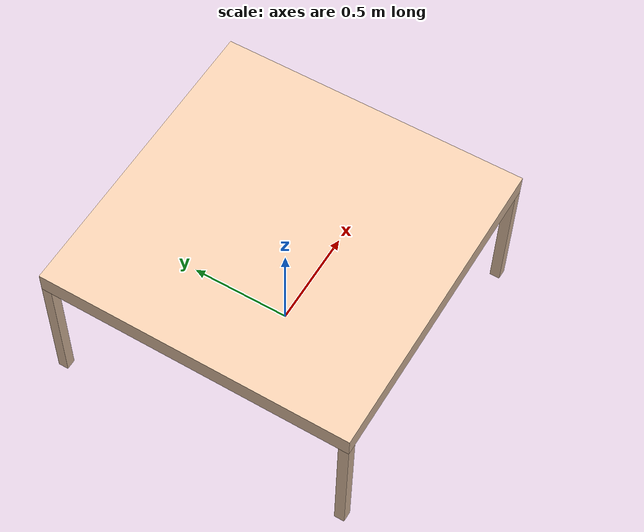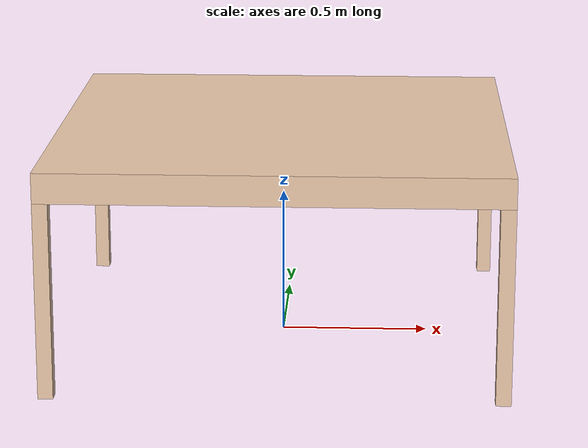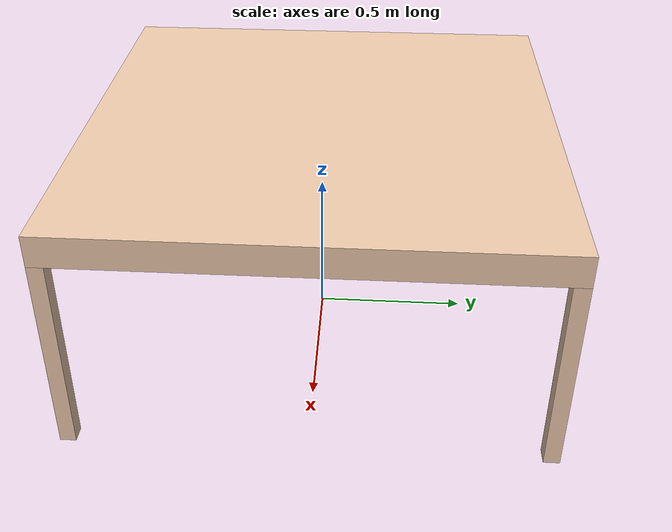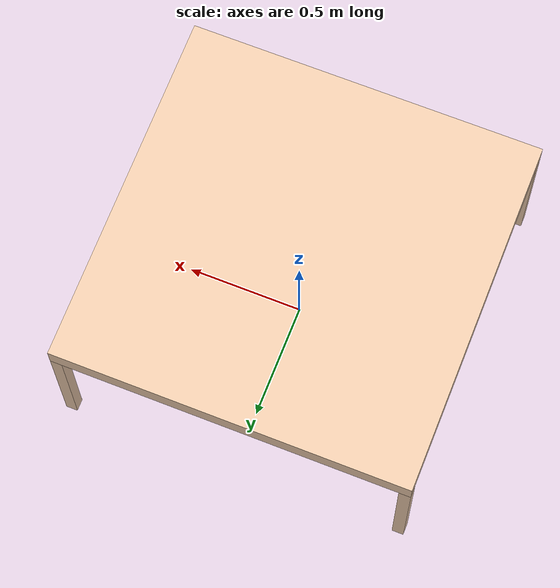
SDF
<?xml version="1.0" ?>
<!-- |    This document was autogenerated by xacro from symphony_table.sdf.xacro | -->
<!-- |    EDITING THIS FILE BY HAND IS NOT RECOMMENDED                                 | -->
<sdf version="1.7" xmlns:drake="http://drake.mit.edu">
  <model name="{model_name}">
    <link name="link">
      <visual name="top_visual">
        <pose>0 0 0.7  0 0 0</pose>
        <geometry>
          <box>
            <size>1.52 1.52 0.1</size>
          </box>
        </geometry>
        <material>
          <diffuse>0.9297 0.7930 0.6758 1.0</diffuse>
        </material>
      </visual>
      <collision name="top_collision">
        <pose>0 0 0.7  0 0 0</pose>
        <geometry>
          <box>
            <size>1.52 1.52 0.1</size>
          </box>
        </geometry>
        <drake:proximity_properties>
          <drake:mesh_resolution_hint>0.05</drake:mesh_resolution_hint>
          <drake:rigid_hydroelastic/>
          <drake:hunt_crossley_dissipation>5</drake:hunt_crossley_dissipation>
          <drake:mu_dynamic>0.3</drake:mu_dynamic>
        </drake:proximity_properties>
      </collision>
      <visual name="front_left_visual">
        <pose>0.735  0.735  0.325 0 0 0</pose>
        <geometry>
          <box>
            <size>0.05 0.05 0.65</size>
          </box>
        </geometry>
        <material>
          <diffuse>0.9297 0.7930 0.6758 1.0</diffuse>
        </material>
      </visual>
      <collision name="front_left_collision">
        <pose>0.735  0.735  0.325 0 0 0</pose>
        <geometry>
          <box>
            <size>0.05 0.05 0.65</size>
          </box>
        </geometry>
      </collision>
      <visual name="front_right_visual">
        <pose>0.735  -0.735  0.325 0 0 0</pose>
        <geometry>
          <box>
            <size>0.05 0.05 0.65</size>
          </box>
        </geometry>
        <material>
          <diffuse>0.9297 0.7930 0.6758 1.0</diffuse>
        </material>
      </visual>
      <collision name="front_right_collision">
        <pose>0.735  -0.735  0.325 0 0 0</pose>
        <geometry>
          <box>
            <size>0.05 0.05 0.65</size>
          </box>
        </geometry>
      </collision>
      <visual name="back_left_visual">
        <pose>-0.735  0.735  0.325 0 0 0</pose>
        <geometry>
          <box>
            <size>0.05 0.05 0.65</size>
          </box>
        </geometry>
        <material>
          <diffuse>0.9297 0.7930 0.6758 1.0</diffuse>
        </material>
      </visual>
      <collision name="back_left_collision">
        <pose>-0.735  0.735  0.325 0 0 0</pose>
        <geometry>
          <box>
            <size>0.05 0.05 0.65</size>
          </box>
        </geometry>
      </collision>
      <visual name="back_right_visual">
        <pose>-0.735  -0.735  0.325 0 0 0</pose>
        <geometry>
          <box>
            <size>0.05 0.05 0.65</size>
          </box>
        </geometry>
        <material>
          <diffuse>0.9297 0.7930 0.6758 1.0</diffuse>
        </material>
      </visual>
      <collision name="back_right_collision">
        <pose>-0.735  -0.735  0.325 0 0 0</pose>
        <geometry>
          <box>
            <size>0.05 0.05 0.65</size>
          </box>
        </geometry>
      </collision>
    </link>
    <frame name="table_bottom_center">
      <pose relative_to="link">0 0 0 0 0 0</pose>
    </frame>
    <frame name="table_bottom_front">
      <pose relative_to="table_bottom_center">0.76 0 0 0 0 0</pose>
    </frame>
    <frame name="table_bottom_back">
      <pose relative_to="table_bottom_center">-0.76 0 0 0 0 0</pose>
    </frame>
    <frame name="table_top_center">
      <pose relative_to="link">0 0 0.75 0 0 0</pose>
    </frame>
    <frame name="table_top_front">
      <pose relative_to="table_top_center">0.76 0 0  0 0 0</pose>
    </frame>
    <frame name="table_top_back">
      <pose relative_to="table_top_center">-0.76 0 0  0 0 0</pose>
    </frame>
    <frame name="table_top_left">
      <pose relative_to="table_top_center">0 0.76 0  0 0 0</pose>
    </frame>
    <frame name="table_top_right">
      <pose relative_to="table_top_center">0 -0.76 0  0 0 0</pose>
    </frame>
  </model>
</sdf>
